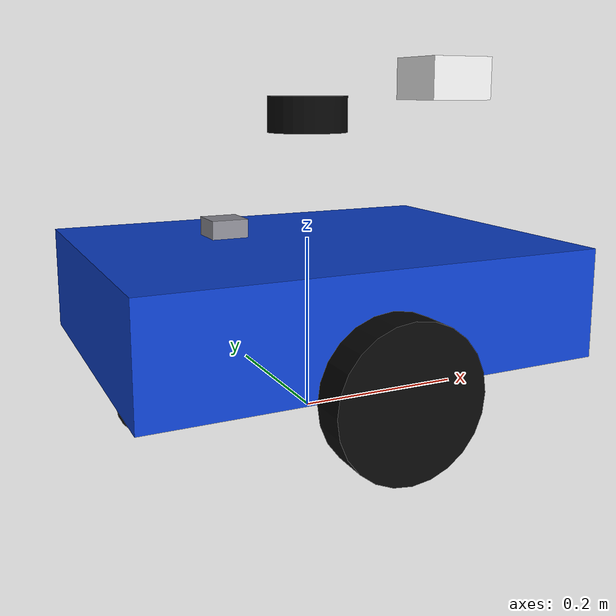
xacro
<?xml version="1.0"?>
<robot xmlns:xacro="http://www.ros.org/wiki/xacro" name="tennis_bot">

  <xacro:include filename="$(find tennis_bot_description)/urdf/materials.xacro"/>
  <xacro:include filename="$(find tennis_bot_description)/urdf/gazebo_control.xacro"/>
  <xacro:include filename="$(find tennis_bot_description)/urdf/gazebo_sensors.xacro"/>

  <!-- Robot parameters -->

  <xacro:property name="base_length" value="0.50"/>
  <xacro:property name="base_width" value="0.38"/>
  <xacro:property name="base_height" value="0.12"/>

  <xacro:property name="wheel_radius" value="0.08"/>
  <xacro:property name="wheel_width" value="0.04"/>
  <xacro:property name="wheel_separation" value="0.42"/>

  <xacro:property name="camera_x" value="0.18"/>
  <xacro:property name="camera_y" value="0.0"/>
  <xacro:property name="camera_z" value="0.24"/>
  <xacro:property name="lidar_z" value="0.20"/>

  <!-- Inertia helper macros -->

  <xacro:macro name="box_inertia" params="mass x y z">
    <inertial>
      <mass value="${mass}"/>
      <origin xyz="0 0 0" rpy="0 0 0"/>
      <inertia
        ixx="${mass * (y*y + z*z) / 12.0}"
        ixy="0.0"
        ixz="0.0"
        iyy="${mass * (x*x + z*z) / 12.0}"
        iyz="0.0"
        izz="${mass * (x*x + y*y) / 12.0}"/>
    </inertial>
  </xacro:macro>

  <xacro:macro name="cylinder_inertia" params="mass radius length">
    <inertial>
      <mass value="${mass}"/>
      <origin xyz="0 0 0" rpy="0 0 0"/>
      <inertia
        ixx="${mass * (3*radius*radius + length*length) / 12.0}"
        ixy="0.0"
        ixz="0.0"
        iyy="${mass * (3*radius*radius + length*length) / 12.0}"
        iyz="0.0"
        izz="${mass * radius*radius / 2.0}"/>
    </inertial>
  </xacro:macro>

  <xacro:macro name="sphere_inertia" params="mass radius">
    <inertial>
      <mass value="${mass}"/>
      <origin xyz="0 0 0" rpy="0 0 0"/>
      <inertia
        ixx="${0.4 * mass * radius * radius}"
        ixy="0.0"
        ixz="0.0"
        iyy="${0.4 * mass * radius * radius}"
        iyz="0.0"
        izz="${0.4 * mass * radius * radius}"/>
    </inertial>
  </xacro:macro>

  <!-- Base -->

  <link name="base_footprint"/>

  <link name="base_link">
    <visual>
      <geometry>
        <box size="${base_length} ${base_width} ${base_height}"/>
      </geometry>
      <material name="blue"/>
    </visual>
    <collision>
      <geometry>
        <box size="${base_length} ${base_width} ${base_height}"/>
      </geometry>
    </collision>
    <xacro:box_inertia mass="5.0"
      x="${base_length}" y="${base_width}" z="${base_height}"/>
  </link>

  <joint name="base_footprint_joint" type="fixed">
    <parent link="base_footprint"/>
    <child link="base_link"/>
    <origin xyz="0 0 ${wheel_radius + base_height/2.0}" rpy="0 0 0"/>
  </joint>

  <!-- Left wheel -->

  <link name="left_wheel_link">
    <visual>
      <origin xyz="0 0 0" rpy="${pi/2.0} 0 0"/>
      <geometry>
        <cylinder radius="${wheel_radius}" length="${wheel_width}"/>
      </geometry>
      <material name="dark"/>
    </visual>
    <collision>
      <origin xyz="0 0 0" rpy="${pi/2.0} 0 0"/>
      <geometry>
        <cylinder radius="${wheel_radius}" length="${wheel_width}"/>
      </geometry>
    </collision>
    <xacro:cylinder_inertia mass="0.40" radius="${wheel_radius}" length="${wheel_width}"/>
  </link>

  <joint name="left_wheel_joint" type="continuous">
    <parent link="base_link"/>
    <child link="left_wheel_link"/>
    <origin xyz="0 ${wheel_separation/2.0} ${-base_height/2.0}" rpy="0 0 0"/>
    <axis xyz="0 1 0"/>
  </joint>

  <!-- Right wheel -->

  <link name="right_wheel_link">
    <visual>
      <origin xyz="0 0 0" rpy="${pi/2.0} 0 0"/>
      <geometry>
        <cylinder radius="${wheel_radius}" length="${wheel_width}"/>
      </geometry>
      <material name="dark"/>
    </visual>
    <collision>
      <origin xyz="0 0 0" rpy="${pi/2.0} 0 0"/>
      <geometry>
        <cylinder radius="${wheel_radius}" length="${wheel_width}"/>
      </geometry>
    </collision>
    <xacro:cylinder_inertia mass="0.40" radius="${wheel_radius}" length="${wheel_width}"/>
  </link>

  <joint name="right_wheel_joint" type="continuous">
    <parent link="base_link"/>
    <child link="right_wheel_link"/>
    <origin xyz="0 ${-wheel_separation/2.0} ${-base_height/2.0}" rpy="0 0 0"/>
    <axis xyz="0 1 0"/>
  </joint>

  <!-- Support casters -->

  <link name="front_caster_link">
    <visual>
      <geometry><sphere radius="0.035"/></geometry>
      <material name="dark"/>
    </visual>
    <collision>
      <geometry><sphere radius="0.035"/></geometry>
    </collision>
    <xacro:sphere_inertia mass="0.15" radius="0.035"/>
  </link>

  <joint name="front_caster_joint" type="fixed">
    <parent link="base_link"/>
    <child link="front_caster_link"/>
    <origin xyz="0.19 0 -0.105" rpy="0 0 0"/>
  </joint>

  <link name="rear_caster_link">
    <visual>
      <geometry><sphere radius="0.035"/></geometry>
      <material name="dark"/>
    </visual>
    <collision>
      <geometry><sphere radius="0.035"/></geometry>
    </collision>
    <xacro:sphere_inertia mass="0.15" radius="0.035"/>
  </link>

  <joint name="rear_caster_joint" type="fixed">
    <parent link="base_link"/>
    <child link="rear_caster_link"/>
    <origin xyz="-0.19 0 -0.105" rpy="0 0 0"/>
  </joint>

  <!-- RGB-D camera -->

  <link name="camera_link">
    <visual>
      <geometry><box size="0.08 0.08 0.05"/></geometry>
      <material name="white"/>
    </visual>
    <collision>
      <geometry><box size="0.08 0.08 0.05"/></geometry>
    </collision>
    <xacro:box_inertia mass="0.15" x="0.08" y="0.08" z="0.05"/>
  </link>

  <joint name="camera_joint" type="fixed">
    <parent link="base_link"/>
    <child link="camera_link"/>
    <origin xyz="${camera_x} ${camera_y} ${camera_z}" rpy="0 0 0"/>
  </joint>

  <!-- ROS optical-frame convention: x right, y down, z forward. -->
  <link name="camera_optical_frame"/>
  <joint name="camera_optical_joint" type="fixed">
    <parent link="camera_link"/>
    <child link="camera_optical_frame"/>
    <origin xyz="0 0 0" rpy="${-pi/2.0} 0 ${-pi/2.0}"/>
  </joint>

  <!-- LiDAR -->

  <link name="lidar_link">
    <visual>
      <geometry><cylinder radius="0.045" length="0.04"/></geometry>
      <material name="dark"/>
    </visual>
    <collision>
      <geometry><cylinder radius="0.045" length="0.04"/></geometry>
    </collision>
    <xacro:cylinder_inertia mass="0.10" radius="0.045" length="0.04"/>
  </link>

  <joint name="lidar_joint" type="fixed">
    <parent link="base_link"/>
    <child link="lidar_link"/>
    <origin xyz="0 0 ${lidar_z}" rpy="0 0 0"/>
  </joint>

  <!-- IMU-->

  <link name="imu_link">
    <visual>
      <geometry><box size="0.04 0.04 0.02"/></geometry>
      <material name="silver"/>
    </visual>
    <collision>
      <geometry><box size="0.04 0.04 0.02"/></geometry>
    </collision>
    <xacro:box_inertia mass="0.05" x="0.04" y="0.04" z="0.02"/>
  </link>

  <joint name="imu_joint" type="fixed">
    <parent link="base_link"/>
    <child link="imu_link"/>
    <origin xyz="-0.10 0 0.08" rpy="0 0 0"/>
  </joint>

  <xacro:tennis_bot_control
    left_joint="left_wheel_joint"
    right_joint="right_wheel_joint"/>

  <gazebo reference="front_caster_link">
	  <mu1>0.0</mu1>
	  <mu2>0.0</mu2>
  </gazebo>

  <gazebo reference="rear_caster_link">
	  <mu1>0.0</mu1>
	  <mu2>0.0</mu2>
  </gazebo>

</robot>

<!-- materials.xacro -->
<robot xmlns:xacro="http://www.ros.org/wiki/xacro">
  <material name="blue">
    <color rgba="0.05 0.25 0.80 1.0"/>
  </material>
  <material name="dark">
    <color rgba="0.03 0.03 0.03 1.0"/>
  </material>
  <material name="white">
    <color rgba="0.95 0.95 0.95 1.0"/>
  </material>
  <material name="silver">
    <color rgba="0.55 0.55 0.58 1.0"/>
  </material>
  <material name="ball_green">
    <color rgba="0.45 0.80 0.05 1.0"/>
  </material>
</robot>
